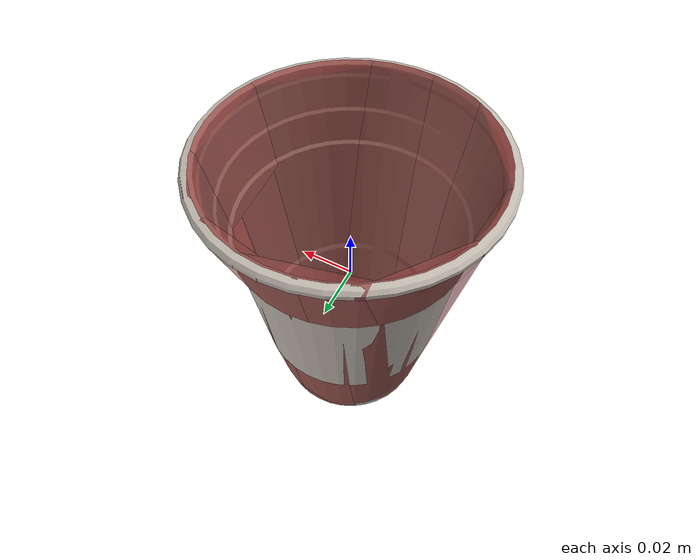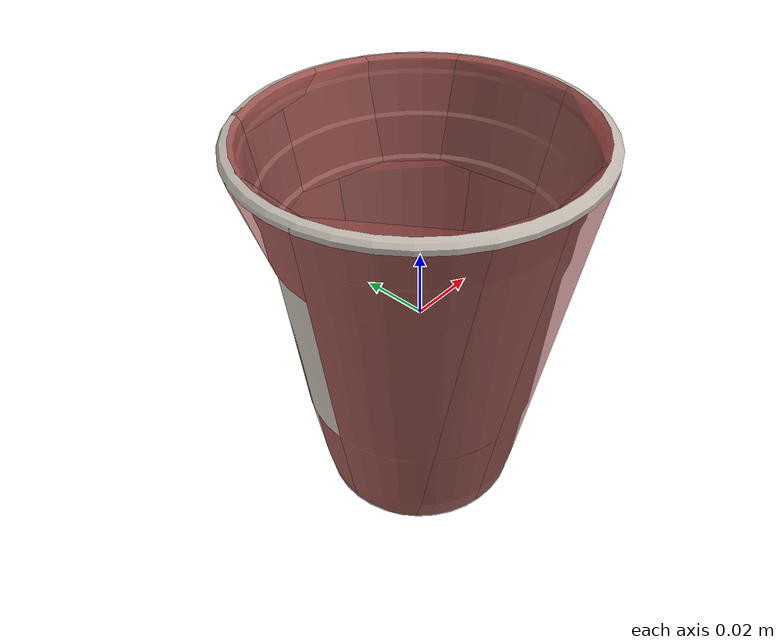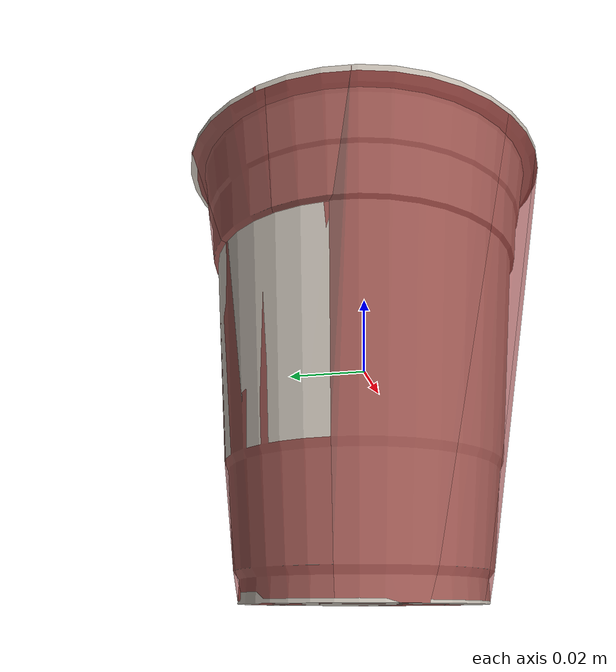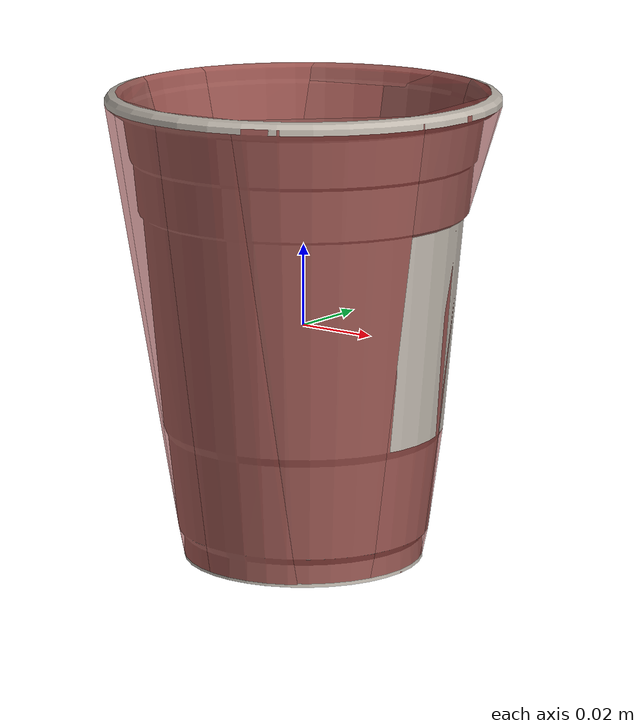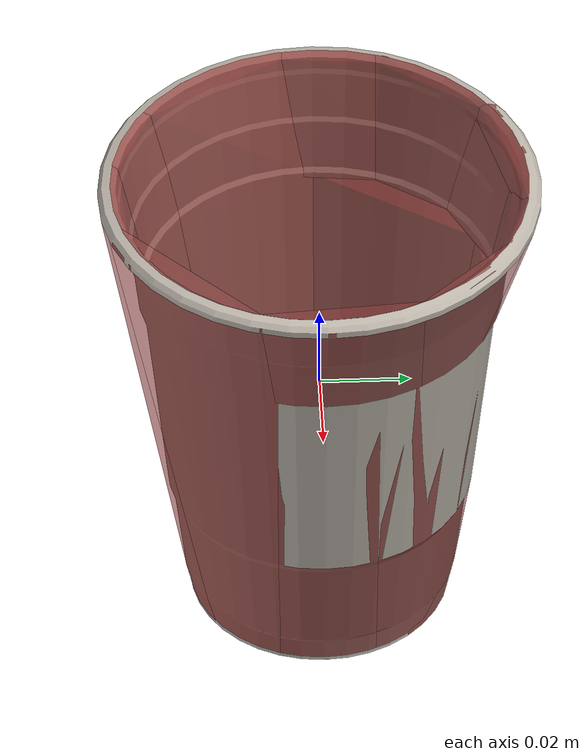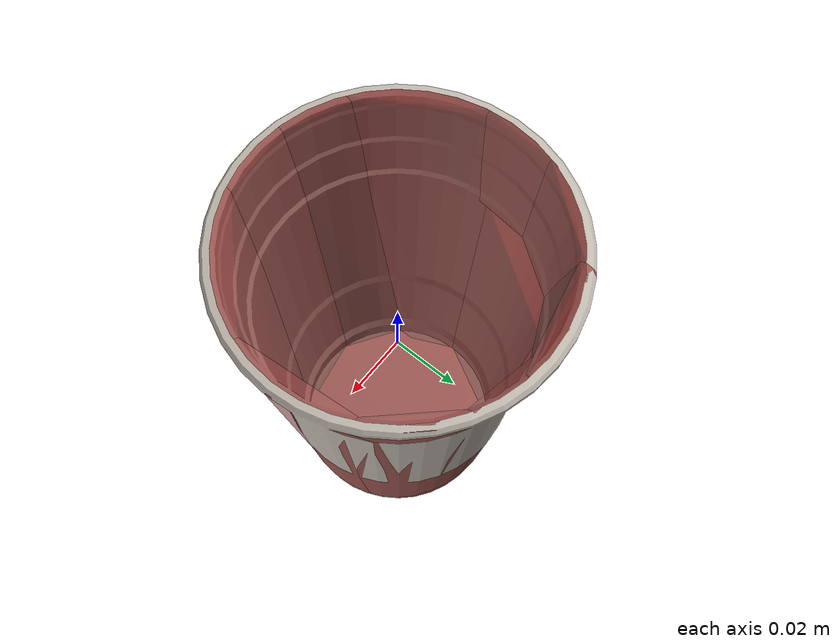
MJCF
<?xml version='1.0' encoding='utf-8'?>
<mujoco model="cup_2">
  <asset>
    <mesh file="visual/model_normalized_0.obj" name="model_normalized_0_vis" scale="0.11499999999999996 0.11499999999999996 0.11499999999999996" refquat="1.0 0.0 0.0 0.0" />
    <texture type="2d" name="image0" file="visual/image0.png" />
    <material name="lambert3SG" texture="image0" specular="0.5" shininess="0.0" />
    <mesh file="collision/collision_mesh_collision_0.obj" name="cup_collision_mesh_0" scale="0.11499999999999996 0.11499999999999996 0.11499999999999996" refquat="1.0 0.0 0.0 0.0" />
    <mesh file="collision/collision_mesh_collision_1.obj" name="cup_collision_mesh_1" scale="0.11499999999999996 0.11499999999999996 0.11499999999999996" refquat="1.0 0.0 0.0 0.0" />
    <mesh file="collision/collision_mesh_collision_2.obj" name="cup_collision_mesh_2" scale="0.11499999999999996 0.11499999999999996 0.11499999999999996" refquat="1.0 0.0 0.0 0.0" />
    <mesh file="collision/collision_mesh_collision_3.obj" name="cup_collision_mesh_3" scale="0.11499999999999996 0.11499999999999996 0.11499999999999996" refquat="1.0 0.0 0.0 0.0" />
    <mesh file="collision/collision_mesh_collision_4.obj" name="cup_collision_mesh_4" scale="0.11499999999999996 0.11499999999999996 0.11499999999999996" refquat="1.0 0.0 0.0 0.0" />
    <mesh file="collision/collision_mesh_collision_5.obj" name="cup_collision_mesh_5" scale="0.11499999999999996 0.11499999999999996 0.11499999999999996" refquat="1.0 0.0 0.0 0.0" />
    <mesh file="collision/collision_mesh_collision_6.obj" name="cup_collision_mesh_6" scale="0.11499999999999996 0.11499999999999996 0.11499999999999996" refquat="1.0 0.0 0.0 0.0" />
    <mesh file="collision/collision_mesh_collision_7.obj" name="cup_collision_mesh_7" scale="0.11499999999999996 0.11499999999999996 0.11499999999999996" refquat="1.0 0.0 0.0 0.0" />
    <mesh file="collision/collision_mesh_collision_8.obj" name="cup_collision_mesh_8" scale="0.11499999999999996 0.11499999999999996 0.11499999999999996" refquat="1.0 0.0 0.0 0.0" />
    <mesh file="collision/collision_mesh_collision_9.obj" name="cup_collision_mesh_9" scale="0.11499999999999996 0.11499999999999996 0.11499999999999996" refquat="1.0 0.0 0.0 0.0" />
    <mesh file="collision/collision_mesh_collision_10.obj" name="cup_collision_mesh_10" scale="0.11499999999999996 0.11499999999999996 0.11499999999999996" refquat="1.0 0.0 0.0 0.0" />
    <mesh file="collision/collision_mesh_collision_11.obj" name="cup_collision_mesh_11" scale="0.11499999999999996 0.11499999999999996 0.11499999999999996" refquat="1.0 0.0 0.0 0.0" />
    <mesh file="collision/collision_mesh_collision_12.obj" name="cup_collision_mesh_12" scale="0.11499999999999996 0.11499999999999996 0.11499999999999996" refquat="1.0 0.0 0.0 0.0" />
    <mesh file="collision/collision_mesh_collision_13.obj" name="cup_collision_mesh_13" scale="0.11499999999999996 0.11499999999999996 0.11499999999999996" refquat="1.0 0.0 0.0 0.0" />
    <mesh file="collision/collision_mesh_collision_14.obj" name="cup_collision_mesh_14" scale="0.11499999999999996 0.11499999999999996 0.11499999999999996" refquat="1.0 0.0 0.0 0.0" />
    <mesh file="collision/collision_mesh_collision_15.obj" name="cup_collision_mesh_15" scale="0.11499999999999996 0.11499999999999996 0.11499999999999996" refquat="1.0 0.0 0.0 0.0" />
  </asset>
  <default>
    <default class="region">
      <geom group="1" conaffinity="0" contype="0" rgba="0 1 0 0" />
    </default>
    <default class="collision">
      <geom group="0" rgba="0.5 0 0 0.5" density="1000.0" />
    </default>
  </default>
  <worldbody>
    <body>
      <body name="object">
        <geom solimp="0.998 0.998 0.001" solref="0.001 1" density="100" friction="0.95 0.3 0.1" type="mesh" mesh="model_normalized_0_vis" conaffinity="0" contype="0" group="1" material="lambert3SG" />
        <geom class="region" name="reg_bbox" type="box" pos="0.0 6.733249999998912e-07 0.0" size="0.037218026149999986 0.03721736317499999 0.05749999999999998" />
        <geom mesh="cup_collision_mesh_0" type="mesh" class="collision" />
        <geom mesh="cup_collision_mesh_1" type="mesh" class="collision" />
        <geom mesh="cup_collision_mesh_2" type="mesh" class="collision" />
        <geom mesh="cup_collision_mesh_3" type="mesh" class="collision" />
        <geom mesh="cup_collision_mesh_4" type="mesh" class="collision" />
        <geom mesh="cup_collision_mesh_5" type="mesh" class="collision" />
        <geom mesh="cup_collision_mesh_6" type="mesh" class="collision" />
        <geom mesh="cup_collision_mesh_7" type="mesh" class="collision" />
        <geom mesh="cup_collision_mesh_8" type="mesh" class="collision" />
        <geom mesh="cup_collision_mesh_9" type="mesh" class="collision" />
        <geom mesh="cup_collision_mesh_10" type="mesh" class="collision" />
        <geom mesh="cup_collision_mesh_11" type="mesh" class="collision" />
        <geom mesh="cup_collision_mesh_12" type="mesh" class="collision" />
        <geom mesh="cup_collision_mesh_13" type="mesh" class="collision" />
        <geom mesh="cup_collision_mesh_14" type="mesh" class="collision" />
        <geom mesh="cup_collision_mesh_15" type="mesh" class="collision" />
        <geom rgba="0 0 0 0" size="0.035 0.005" pos="0 0 0.04" type="cylinder" name="liquid" class="region" />
        <geom rgba="0 0 0 0 " size="0.028 0.055" pos="0 0 0" type="cylinder" name="reg_int" class="region" />
      </body>
    <site rgba="0 0 0 0" size="0.005" pos="0 0 -0.0575" name="bottom_site" /><site rgba="0 0 0 0" size="0.005" pos="0 0 0.0575" name="top_site" /><site rgba="0 0 0 0" size="0.005" pos="0.037218036 0.037218036 0" name="horizontal_radius_site" /></body>
  </worldbody>
</mujoco>
